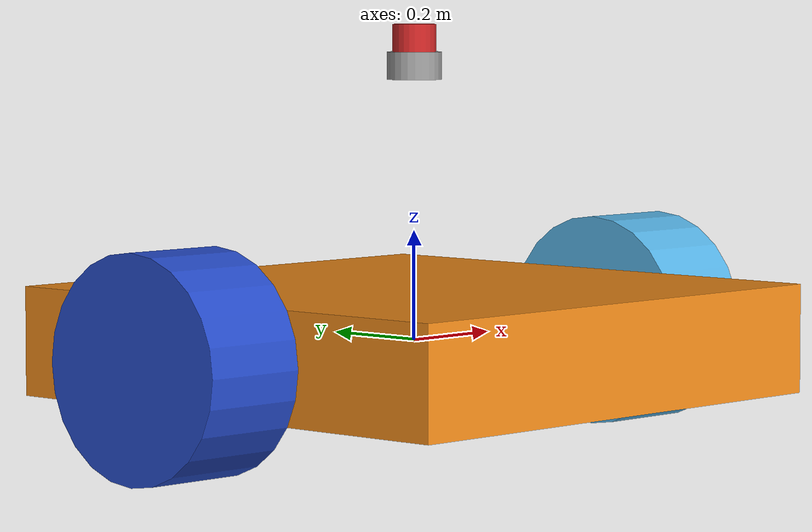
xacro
<?xml version="1.0" ?>

<robot name="wheely_robot" xmlns:xacro="http://www.ros.org/wiki/xacro">

<link name="robot_base">
    <visual>
        <geometry>
            <box size="1.0 1.0 0.2"/>
        </geometry>
        <material name="orange"/>
    </visual>
    <collision>
        <geometry>
            <box size="1.0 1.0 0.2"/>
        </geometry>
  </collision>
  <mass>0.1</mass>
  <inertial>
    <origin xyz="0 0 0.5" rpy="0 0 0"/>
    <mass value="1"/>
    <inertia ixx="100"  ixy="0"  ixz="0" iyy="100" iyz="0" izz="100" />
  </inertial>
</link>

<link name="left_wheel">
    <visual>
        <geometry>
            <cylinder length="0.2" radius="0.2"/>
        </geometry>
    </visual>
    <collision>
        <geometry>
            <cylinder length="0.2" radius="0.2"/>
        </geometry>
    </collision>
    <mass>0.1</mass>
  <inertial>
    <origin xyz="0 0 0.5" rpy="0 0 0"/>
    <mass value="1"/>
    <inertia ixx="100"  ixy="0"  ixz="0" iyy="100" iyz="0" izz="100" />
  </inertial>
</link>

<link name="right_wheel">
    <visual>
        <geometry>
            <cylinder length="0.2" radius="0.2"/>
        </geometry>
    </visual>
    <collision>
        <geometry>
            <cylinder length="0.2" radius="0.2"/>
        </geometry>
    </collision>
    <mass>0.1</mass>
  <inertial>
    <origin xyz="0 0 0.5" rpy="0 0 0"/>
    <mass value="1"/>
    <inertia ixx="100"  ixy="0"  ixz="0" iyy="100" iyz="0" izz="100" />
  </inertial>
</link>

<joint name="base_to_lwheel" type="continuous">
  <parent link="robot_base"/>
  <child link="left_wheel"/>
  <origin xyz="0.6 0 0" rpy="0 1.57079632679 0"/>
  <axis xyz="0 0 1"/>
</joint>

<joint name="base_to_rwheel" type="continuous">
  <parent link="robot_base"/>
  <child link="right_wheel"/>
  <origin xyz="-0.6 0 0" rpy="0 1.57079632679 0"/>
  <axis xyz="0 0 1"/>
</joint>

<gazebo reference="right_wheel">
<material>Gazebo/Blue</material>
</gazebo>

<xacro:include filename="$(find my_robot)/urdf/lidar.xacro"/>
<joint name="lidarGlue" type="fixed">
  <parent link="robot_base"/>
  <child link="laz_base"/>
  <origin xyz="0 0 ${1/2}"/>
</joint>

</robot>

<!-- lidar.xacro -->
<robot xmlns:xacro="http://www.ros.org/wiki/xacro" name="lazDar">
  <xacro:property name="base_radius" value="0.05"/>
  <xacro:property name="base_height" value="0.05"/>
  <xacro:property name="laz_radius" value="0.04"/>
  <xacro:property name="laz_height" value="0.1"/>

  <gazebo reference="laz_base">
    <material>Gazebo/Grey</material>
    <mu1>0.2</mu1>
    <mu2>0.2</mu2>
  </gazebo>

  <link name="laz_base">
    <visual>
      <geometry>
        <cylinder length="${base_height}" radius="${base_radius}"/>
      </geometry>
    </visual>

    <collision>
      <geometry>
        <cylinder length="${base_height}" radius="${base_radius}"/>
      </geometry>
    </collision>

    <inertial>
      <mass value="0.1"/>
      <inertia ixx="${(1/12) * 0.1 * (3 * base_radius * base_radius + base_height * base_height)}" ixy="0" ixz="0" iyy="${(1/12) * 0.1 * (3 * base_radius * base_radius + base_height * base_height)}" iyz="0" izz="${(1/2) * 0.1 * base_radius * base_radius}"/>
    </inertial>
  </link>

  <gazebo reference="laz_rot">
    <material>Gazebo/RedGlow</material>
    <mu1>0.2</mu1>
    <mu2>0.2</mu2>
    <sensor type="ray" name="laz">
       <always_on>true</always_on>
       <pose>${laz_radius} 0 ${laz_height/4} ${pi/2} 0 0</pose>
       <visualize>true</visualize>
       <update_rate>30</update_rate>
       <ray>
         <scan>
           <horizontal>
             <samples>1</samples>
             <resolution>1</resolution>
             <min_angle>-0.15</min_angle>
             <max_angle>0.15</max_angle>
           </horizontal>
           <vertical>
             <samples>15</samples>
             <resolution>1</resolution>
             <min_angle>${0}</min_angle>
             <max_angle>${pi/2}</max_angle>
           </vertical>
         </scan>
          <range>
           <min>0.05</min>
           <max>15</max>
           <resolution>0.02</resolution>
         </range>
      </ray>
   </sensor>
  </gazebo>

  <link name="laz_rot">
    <visual>
      <geometry>
        <cylinder length="${laz_height}" radius="${laz_radius}"/>
      </geometry>
    </visual>

    <collision>
      <geometry>
        <cylinder length="${laz_height}" radius="${laz_radius}"/>
      </geometry>
    </collision>

    <inertial>
      <mass value="0.1"/>
      <inertia ixx="${(1/12) * 0.1 * (3 * laz_radius * laz_radius + laz_height * laz_height)}" ixy="0" ixz="0" iyy="${(1/12) * 0.1 * (3 * laz_radius * laz_radius + laz_height * laz_height)}" iyz="0" izz="${(1/2) * 0.1 * laz_radius * laz_radius}"/>
    </inertial>
  </link>

  <joint name="lazRot" type="continuous">
    <parent link="laz_base"/>
    <child link="laz_rot"/>
    <axis xyz="0 0 1"/>
    <origin xyz = "0 0 ${base_height/2}"/>
    <dynamics friction="0.1"/>
  </joint>
</robot>
